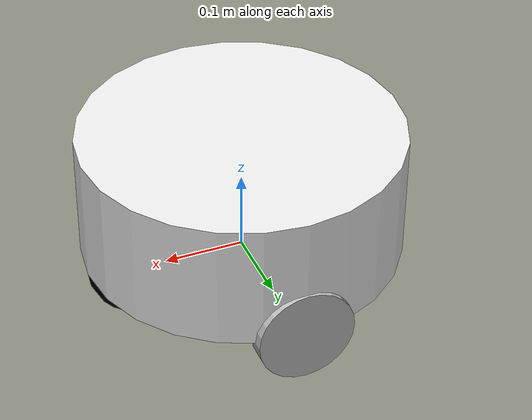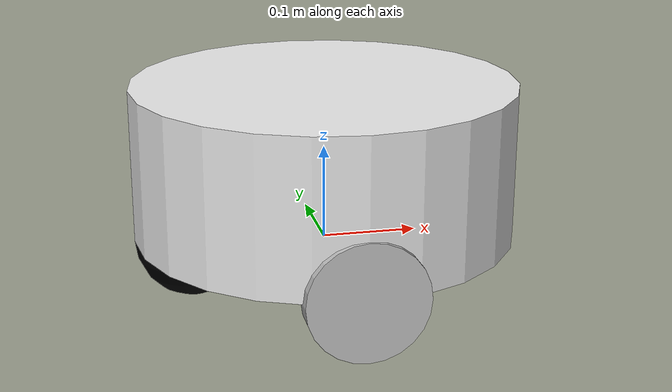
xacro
<?xml version="1.0"?>
<robot name="arm" xmlns:xacro="http://www.ros.org/wiki/xacro">

    <xacro:include filename="$(find multi_turtlebots_sim)/turtlebot3_description/urdf/mbot_base.xacro" />

    <!-- car length0.16，camera highth0.08 -->

   <!--neck link-->

    <!-- Camera joint-->

</robot>

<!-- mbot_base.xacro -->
<robot name="mbot" xmlns:xacro="http://www.ros.org/wiki/xacro">

    <!-- PROPERTY LIST -->
    <xacro:property name="M_PI" value="3.14"/>
    <!--lengthradius-->
    <xacro:property name="base_radius" value="0.20"/>
    <xacro:property name="base_length" value="0.16"/>
    <xacro:property name="base_mass"   value="20" />
    <xacro:property name="wheel_radius" value="0.06"/>
    <xacro:property name="wheel_length" value="0.025"/>
    <xacro:property name="wheel_joint_y" value="0.19"/>
    <xacro:property name="wheel_joint_z" value="0.0"/>
    <xacro:property name="caster_radius" value="0.06"/>

    <xacro:property name="body_x" value="0.2" />
    <xacro:property name="body_y" value="0.1" />
    <xacro:property name="body_z" value="0.05" />
    <xacro:property name="body_mass" value="0.5" />

    <xacro:property name="caster_joint_x" value="0.14"/>

    <xacro:include filename="$(find multi_turtlebots_sim)/turtlebot3_description/urdf/mbot_base.gazebo.xacro"/>

<!-- Defining the colors used in this robot -->
    <material name="yellow">
        <color rgba="1 0.4 0 1"/>
    </material>
    <material name="black">
        <color rgba="0 0 0 0.95"/>
    </material>
    <material name="gray">
        <color rgba="0.75 0.75 0.75 1"/>
    </material>

    <xacro:macro name="wheel" params="prefix reflect">
        <joint name="${prefix}_wheel_joint" type="continuous"> <!--continuous360joint-->
            <origin xyz="0 ${reflect*wheel_joint_y} 0" rpy="0 0 0"/>
            <parent link="base_link"/>
            <child link="${prefix}_wheel_link"/>
            <axis xyz="0 1 0"/>
        </joint>
        <link name="${prefix}_wheel_link">
            <visual>
                <origin xyz="0 0 0" rpy="${M_PI/2} 0 0" />
                <geometry>
                    <cylinder radius="${wheel_radius}" length = "${wheel_length}"/>
                </geometry>
                <material name="gray" />
            </visual>
            <collision>
                <geometry>
                    <cylinder radius="${wheel_radius}" length = "${wheel_length}"/>
                </geometry>
                <origin xyz="0 0 0" rpy="${M_PI/2} 0 0" />
            </collision>
            <inertial>
                <mass value="${body_mass}" />
                <inertia ixx="${body_mass/12*(body_y*body_y+body_z*body_z)}"
                iyy="${body_mass/12*(body_x*body_x+body_z*body_z)}"
                izz="${body_mass/12*(body_y*body_y+body_x*body_x)}"
                ixy="0.0" ixz="0.0" iyz="0.0"/>
            </inertial>
        </link>
    </xacro:macro>

 <!-- Macro for robot caster -->
    <xacro:macro name="caster" params="prefix reflect">
        <joint name="${prefix}_caster_joint" type="continuous">
        <!---(base_length/2 + caster_radius)-->
            <origin xyz="${reflect*caster_joint_x} 0 0" rpy="0 0 0"/>
            <parent link="base_link"/>
            <child link="${prefix}_caster_link"/>
            <axis xyz="0 1 0"/>
        </joint>

        <link name="${prefix}_caster_link">
            <visual>
                <origin xyz="0 0 0" rpy="0 0 0"/>
                <geometry>
                    <sphere radius="${caster_radius}" />
                </geometry>
                <material name="black" />
            </visual>
            <collision>
                <geometry>
                    <sphere radius="${caster_radius}" />
                </geometry>
                <origin xyz="0 0 0"/>
            </collision>
            <inertial>
                <mass value="${body_mass}" />
                <inertia ixx="${body_mass/12*(body_y*body_y+body_z*body_z)}"
                iyy="${body_mass/12*(body_x*body_x+body_z*body_z)}"
                izz="${body_mass/12*(body_y*body_y+body_x*body_x)}"
                ixy="0.0" ixz="0.0" iyz="0.0"/>
            </inertial>
        </link>
    </xacro:macro>

   <xacro:macro name="mbot_base">
        <link name="base_link">
            <visual>
                <geometry>
                    <cylinder length="${base_length}" radius="${base_radius}"/>
                </geometry>
                <material name="white"/>
                <origin xyz="0 0 ${base_length/2}"/>
            </visual>
            <collision>
                <geometry>
                    <cylinder length="${base_length}" radius="${base_radius}"/>
                </geometry>
                <origin xyz="0 0 ${base_length/2}"/>
            </collision>
            <inertial>
                <mass value="${body_mass}" />
                <inertia ixx="${body_mass/12*(body_y*body_y+body_z*body_z)}"
                iyy="${body_mass/12*(body_x*body_x+body_z*body_z)}"
                izz="${body_mass/12*(body_y*body_y+body_x*body_x)}"
                ixy="0.0" ixz="0.0" iyz="0.0"/>
            </inertial>
        </link>

        <link name="base_footprint"/>
        <joint name="base_joint" type="fixed">
            <parent link="base_footprint"/>
            <child link="base_link"/>
            <origin xyz="0.0 0.0 0.010" rpy="0 0 0"/>
        </joint>
        <wheel prefix="left" reflect="-1"/>
        <wheel prefix="right" reflect="1"/>
        <caster prefix="front" reflect="1"/>
        <caster prefix="back" reflect="-1"/>
    </xacro:macro>

<xacro:mbot_base/>

</robot>
